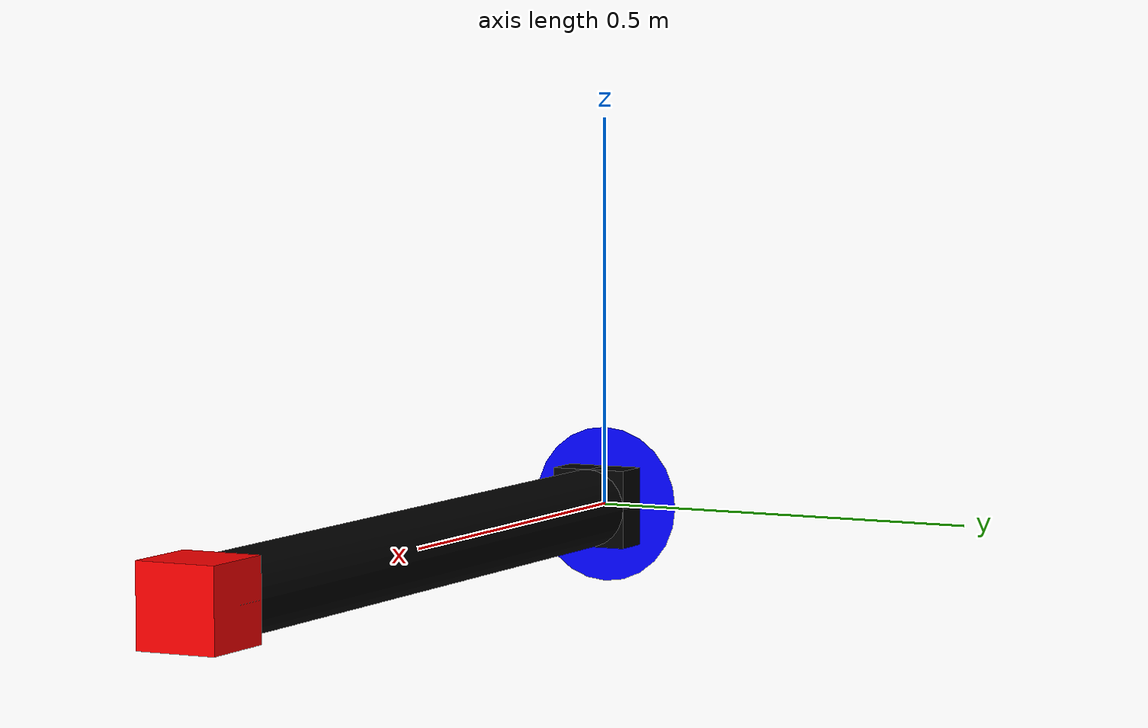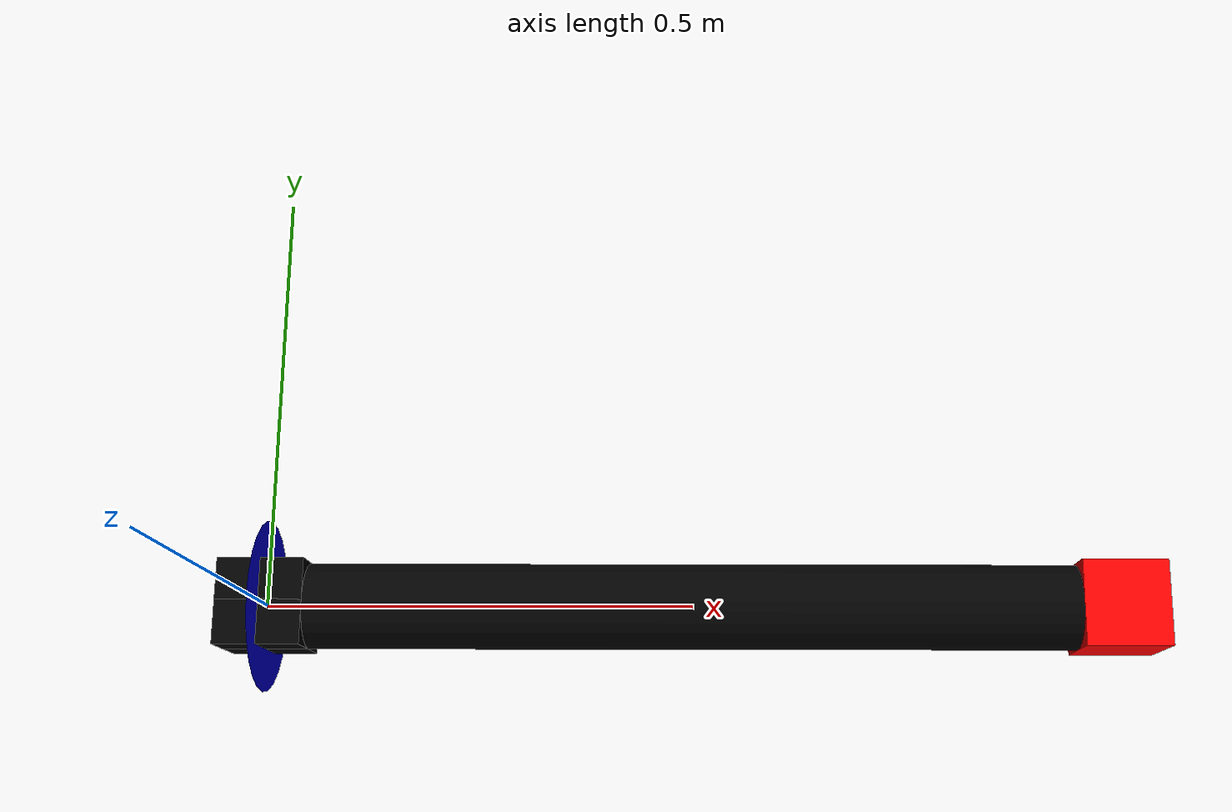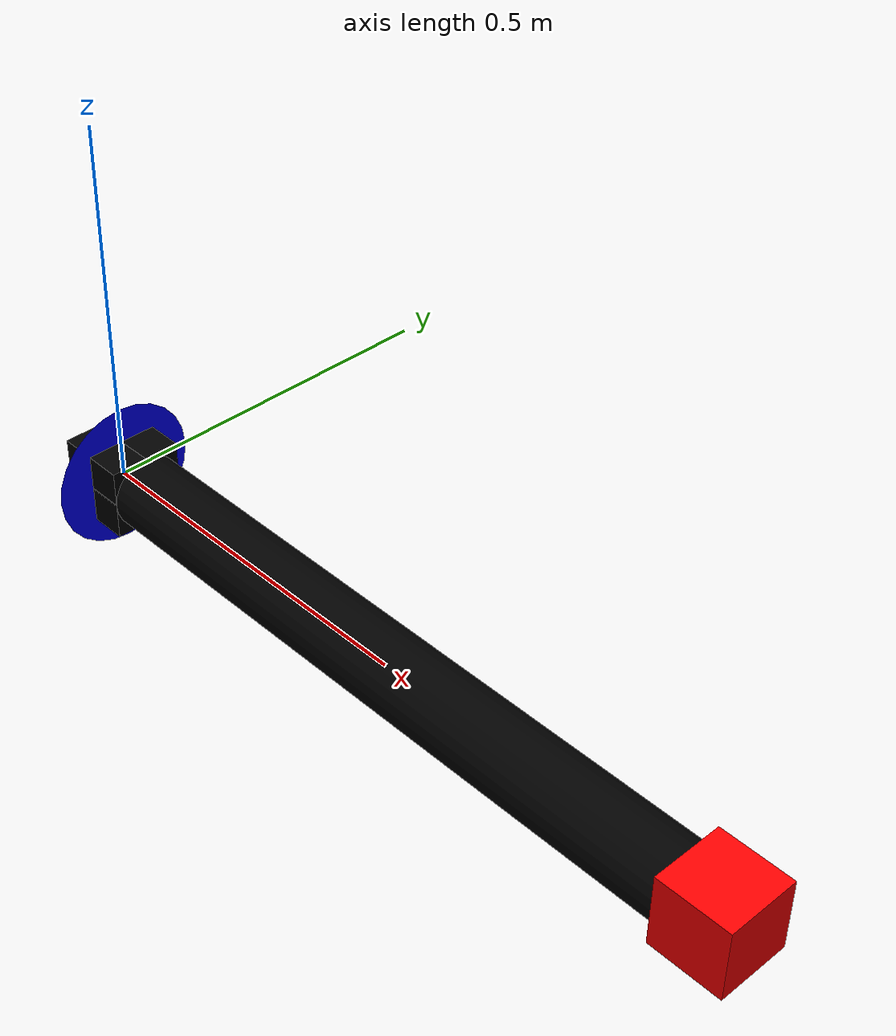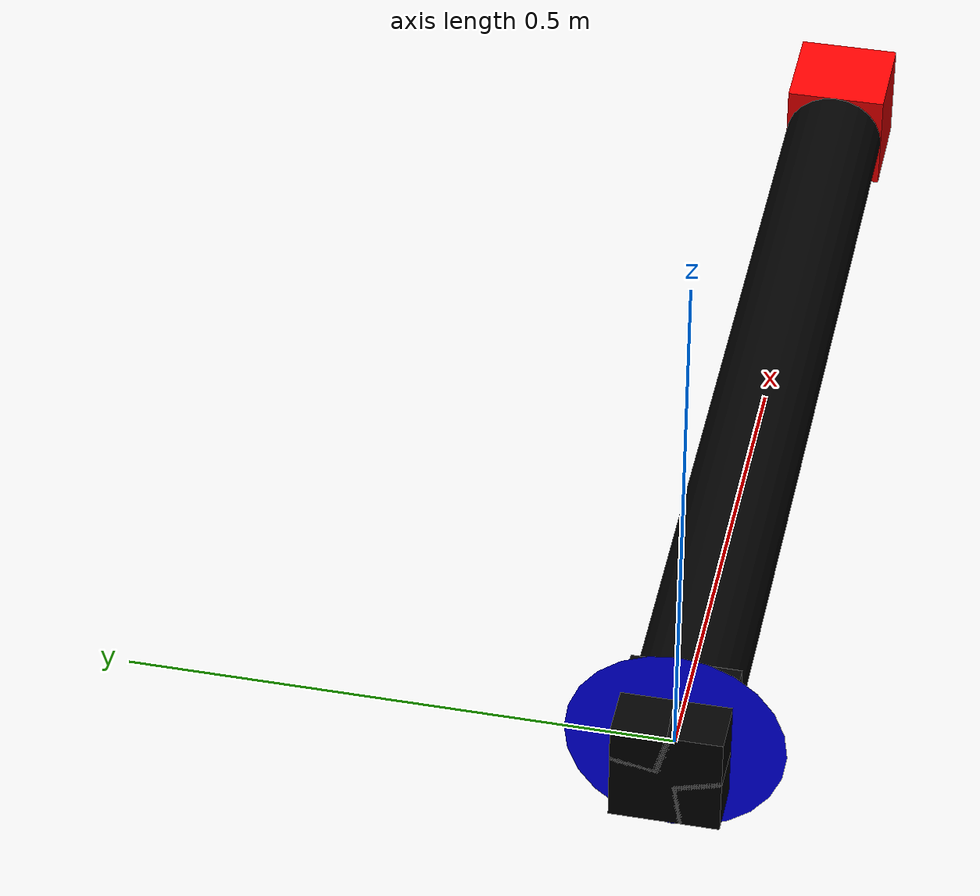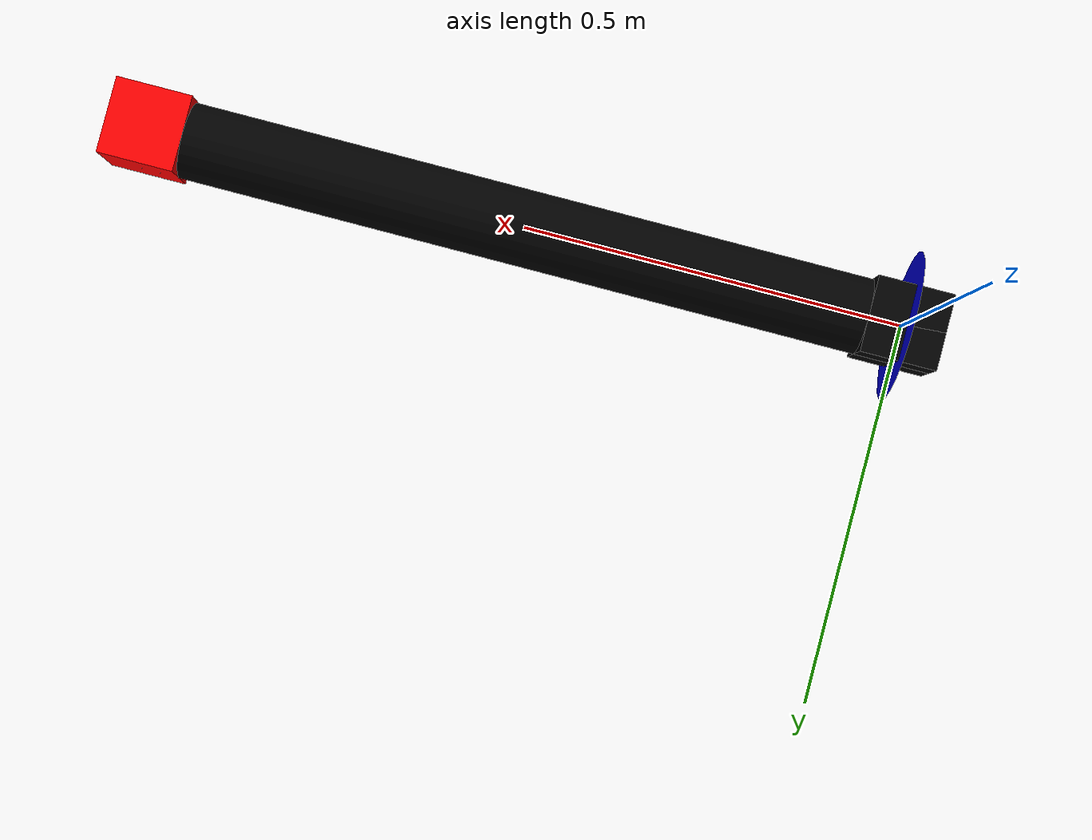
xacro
<?xml version="1.0"?>
<robot name="three_link_manipulator" xmlns:xacro="http://ros.org/wiki/xacro">

<xacro:property name="radius" value="0.1" />
<xacro:property name="radius1" value="0.0" />
<xacro:property name="length" value="1" />
<xacro:property name="length1" value="0" />
 <xacro:property name="pi" value="3.1415" />

<xacro:macro name="default_inertial" params="mass">
	<inertial>
		<mass value="${mass}" />
	<inertia ixx="1.0" ixy="0.0" ixz="0.0"
	          iyy="1.0" iyz="0.0"
	          izz="1.0" />
	</inertial>
</xacro:macro>

  <material name="black">
      <color rgba="0 0 0 1"/>
  </material>

  <material name="red">
       <color rgba="1 0 0 1"/>
  </material>

  <material name="blue">
	<color rgba="0 0 1 1"/>
   </material>

  <link name="base_link">
    <visual>
      <geometry>
        <box size="0.1 0.1 0.1"/>
      </geometry>
      <material name="black"/>
    </visual>
  </link>

  <link name="link1">
    <visual>
      <geometry>
        <cylinder length="${length1}" radius="0.05"/>
      </geometry>
      <origin rpy="0 0 0" xyz="0 0 0"/>
      <material name="red"/>
    </visual>
    <xacro:default_inertial mass="10"/>
  </link>

  <link name="link2">
    <visual>
      <geometry>
        <cylinder length="${length1}" radius="${radius}"/>
      </geometry>
      <origin rpy="0 0 0" xyz="0 0 0"/>
	<material name="blue"/>
    </visual>
    <xacro:default_inertial mass="10"/>
  </link>
  <link name="link3">
    <visual>
      <geometry>
        <cylinder length="1" radius="${radius/2}"/>
      </geometry>
      <origin rpy=" ${-pi/2} 0 0" xyz="0 -0.5 0"/>
        <material name="black"/>
    </visual>
    <xacro:default_inertial mass="10"/>
  </link>

<link name="EE">
  <visual>
    <geometry>
      <box size="0.1 0.1 0.1"/>
    </geometry>
    <material name="red"/>
  </visual>
</link>
<link name="BASE">
<visual>
  <geometry>
    <box size="0.1 0.1 0.1"/>
  </geometry>
  <material name="black"/>
</visual>
</link>
  <joint name= "base_to_baselink" type="fixed">
    <parent link="BASE"/>
    <child link="base_link"/>
    <origin rpy="${pi/2} 0 0" xyz="0 0 0"/>
  </joint>

  <joint name="base_to_link1" type="revolute">
    <parent link="base_link"/>
    <child link="link1"/>
    <axis xyz="0 0 1"/>
    <origin rpy = "0 0 0" xyz="0 0 0"/>
    <limit effort = "1000.0" lower="${-pi/2}" upper = "${pi/2}" velocity="0.5"/>
  </joint>

  <joint name="link1_to_link2" type="prismatic">
    <parent link="link1"/>
    <child link="link2"/>
    <axis xyz="0 0 1"/>
     <origin rpy="${pi/2} 0 ${pi/2}" xyz="0 0 0"/>
    <limit effort = "1000.0" lower="0" upper = "0.2" velocity="0.5"/>
  </joint>

  <joint name="link2_to_link3" type="revolute">
    <parent link="link2"/>
    <child link="link3"/>
    <axis xyz="0 0 1"/>
    <origin rpy = "${-pi/2} 0 0" xyz="0 0 0"/>
    <limit effort = "1000.0" lower="0" upper = "${pi}" velocity="0.5"/>
  </joint>

  <joint name="link3_to_EE" type="fixed">
    <parent link="link3"/>
    <child link="EE"/>
    <axis xyz="0 0 0"/>
    <origin xyz="0 -1 0"/>
    <limit effort = "1000.0" lower="${-pi/2}" upper = "${pi/2}" velocity="0.5"/>
  </joint>
</robot>
